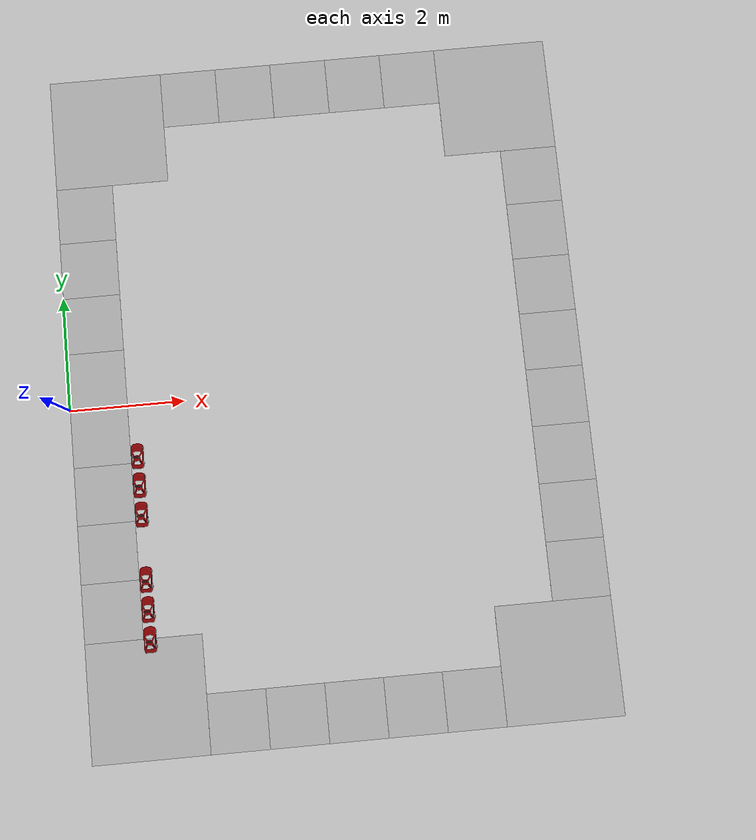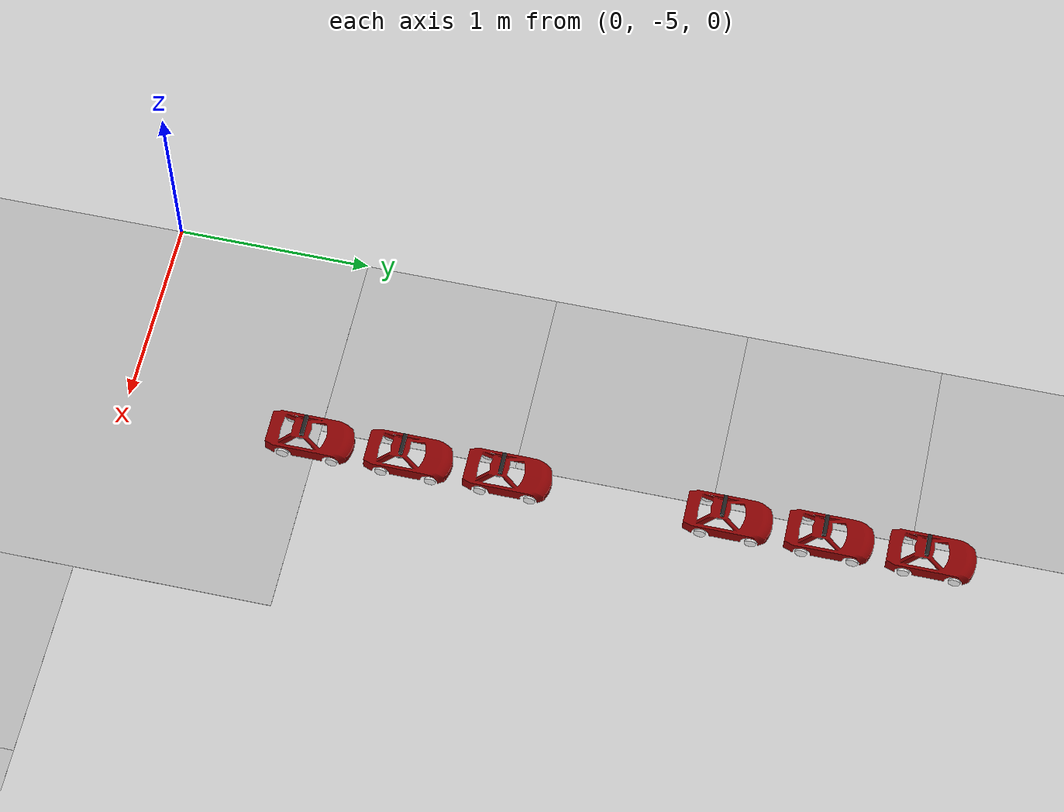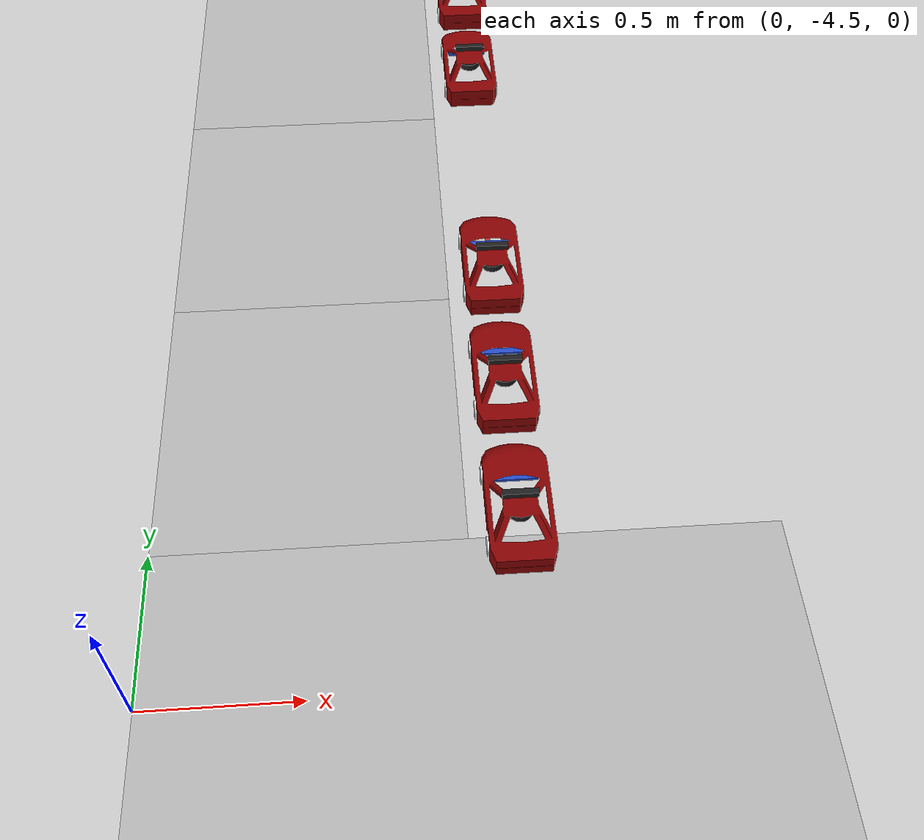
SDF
<?xml version="1.0" ?>
<sdf version="1.5">
  <world name="parallel_parking">
  	<include>
      <uri>model://ground_plane</uri>
      <pose> 0 0 -.0001 0 0 0 </pose>
    </include>

    <include>
      <uri>model://sun</uri>
    </include>

    <include>
      	<uri>model://AutoNOMOS_mini_static</uri>
      	<pose>1.15 -4 0.16 0 0 1.5707 </pose>
    </include>

    <include>
      	<uri>model://AutoNOMOS_mini_static</uri>
      	<pose>1.15 -3.5 0.16 0 0 1.5707 </pose>
    </include>

    <include>
      	<uri>model://AutoNOMOS_mini_static</uri>
      	<pose>1.15 -3 0.16 0 0 1.5707 </pose>
    </include>

    <include>
      	<uri>model://AutoNOMOS_mini_static</uri>
      	<pose>1.15 -1.9 0.16 0 0 1.5707 </pose>
    </include>

    <include>
      	<uri>model://AutoNOMOS_mini_static</uri>
      	<pose>1.15 -1.4 0.16 0 0 1.5707 </pose>
    </include>

    <include>
      	<uri>model://AutoNOMOS_mini_static</uri>
      	<pose>1.15 -0.9 0.16 0 0 1.5707 </pose>
    </include>

    <include>
      <uri>model://straight_road</uri>
      <pose>.5 .5 0 0 0 0 </pose>
    </include>

    <include>
      <uri>model://straight_road</uri>
      <pose>.5 -.5 0 0 0 0 </pose>
    </include>

    <include>
      <uri>model://straight_road</uri>
      <pose>.5 1.5 0 0 0 0 </pose>
    </include>

    <include>
      <uri>model://straight_road</uri>
      <pose>.5 -1.5 0 0 0 0 </pose>
    </include>

    <include>
      <uri>model://straight_road</uri>
      <pose>.5 -2.5 0 0 0 0 </pose>
    </include>

    <include>
      <uri>model://straight_road</uri>
      <pose>.5 2.5 0 0 0 0 </pose>
    </include>

    <include>
      <uri>model://straight_road</uri>
      <pose>.5 -3.5 0 0 0 0 </pose>
    </include>

    <include>
      <uri>model://straight_road</uri>
      <pose>.5 3.5 0 0 0 0 </pose>
    </include>

    <include>
      <uri>model://curved_road</uri>
      <pose> 1 5 0 0 0 0 </pose>
  	</include>

  	<include>
      <uri>model://straight_road</uri>
      <pose> 2.5 5.5 0 0 0 -1.570796327 </pose>
    </include>

    <include>
      <uri>model://straight_road</uri>
      <pose>3.5 5.5 0 0 0 -1.570796327 </pose>
    </include>

    <include>
      <uri>model://straight_road</uri>
      <pose>4.5 5.5 0 0 0 -1.570796327 </pose>
    </include>

    <include>
      <uri>model://straight_road</uri>
      <pose>5.5 5.5 0 0 0 -1.570796327 </pose>
    </include>

    <include>
      <uri>model://straight_road</uri>
      <pose>6.5 5.5 0 0 0 -1.570796327 </pose>
    </include>

    <include>
      <uri>model://curved_road</uri>
      <pose> 8 5 0 0 0 -1.570796327 </pose>
  	</include>

    <include>
      <uri>model://straight_road</uri>
      <pose>2.5 -5.5 0 0 0 1.570796327 </pose>
    </include>

    <include>
      <uri>model://straight_road</uri>
      <pose>3.5 -5.5 0 0 0 1.570796327 </pose>
    </include>

    <include>
      <uri>model://straight_road</uri>
      <pose>4.5 -5.5 0 0 0 1.570796327 </pose>
    </include>

    <include>
      <uri>model://straight_road</uri>
      <pose>5.5 -5.5 0 0 0 1.570796327 </pose>
    </include>

    <include>
      <uri>model://straight_road</uri>
      <pose>6.5 -5.5 0 0 0 1.570796327 </pose>
    </include>

    <include>
      <uri>model://curved_road</uri>
      <pose> 8 -5 0 0 0 3.141592654 </pose>
  	</include>

    <include>
      <uri>model://straight_road</uri>
      <pose>8.5 .5 0 0 0 3.141592654 </pose>
    </include>

    <include>
      <uri>model://straight_road</uri>
      <pose>8.5 1.5 0 0 0 3.141592654 </pose>
    </include>

    <include>
      <uri>model://straight_road</uri>
      <pose>8.5 2.5 0 0 0 3.141592654 </pose>
    </include>

    <include>
      <uri>model://straight_road</uri>
      <pose>8.5 3.5 0 0 0 3.141592654 </pose>
    </include>

    <include>
      <uri>model://straight_road</uri>
      <pose>8.5 -.5 0 0 0 3.141592654 </pose>
    </include>

    <include>
      <uri>model://straight_road</uri>
      <pose>8.5 -1.5 0 0 0 3.141592654 </pose>
    </include>

    <include>
      <uri>model://straight_road</uri>
      <pose>8.5 -2.5 0 0 0 3.141592654 </pose>
    </include>

    <include>
      <uri>model://straight_road</uri>
      <pose>8.5 -3.5 0 0 0 3.141592654 </pose>
    </include>

      <include>
      <uri>model://curved_road</uri>
      <pose> 1 -5 0 0 0 1.570796327 </pose>
  	</include>
  </world>
</sdf>

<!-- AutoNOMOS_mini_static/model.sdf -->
<sdf version='1.3'>
  <model name='AutoNOMOS_mini_static'>

    <link name='base_link'>
    </link>

    <link name="body">
      	<inertial>
	        <mass>6</mass>
	        <inertia>
	          <ixx>0.0067</ixx>
	          <ixy>0.000000</ixy>
	          <ixz>0.00088</ixz>
	          <iyy>0.07846</iyy>
	          <iyz>0.000000</iyz>
	          <izz>0.08387</izz>
	        </inertia>
      	</inertial>

	    <visual name="visual_body">
	      	<geometry>
				<mesh><uri>model://AutoNOMOS_mini/meshes/autonomos.dae</uri></mesh>
	      	</geometry>
	    </visual>

	    <collision name="collision_body">
	    	<geometry>
				<mesh><uri>model://AutoNOMOS_mini/meshes/autonomos.dae</uri></mesh>
	      	</geometry>
	    </collision>

    </link>

    <joint name="base_link_to_body" type="fixed">
    	<pose>0.000000 0.000000 0.000000 0.000000 0.000000 0.000000</pose>
    	<parent>base_link</parent>
		<child>body </child>
    </joint>

    <link name='back_left_wheel_link'>
      <pose>-0.125000 0.100000 0.0100000 1.570800 0.000000 0.000000</pose>
      <inertial>
        <mass>0.010000</mass>
        <inertia>
          <ixx>0.010000</ixx>
          <ixy>0.000000</ixy>
          <ixz>0.000000</ixz>
          <iyy>0.010000</iyy>
          <iyz>0.000000</iyz>
          <izz>0.010000</izz>
        </inertia>
      </inertial>
      <collision name='back_left_wheel_link_geom'>
        <geometry>
          <cylinder>
            <length>0.01000</length>
            <radius>0.03000</radius>
          </cylinder>
        </geometry>
      </collision>
      <visual name='back_left_wheel_link_visual'>
        <geometry>
          <cylinder>
            <length>0.01000</length>
            <radius>0.03000</radius>
          </cylinder>
        </geometry>
        <material>
          <script>
            <name>Gazebo/White</name>
          </script>
        </material>
      </visual>
    </link>

    <joint name='back_left_wheel_joint' type='revolute'>
      <child>back_left_wheel_link</child>
      <parent>base_link</parent>
      <axis>
        <xyz>0.000000 1.000000 0.000000</xyz>
        <limit>
          <lower>-10000000000000000.000000</lower>
          <upper>10000000000000000.000000</upper>
        </limit>
      </axis>
    </joint>

    <link name='back_right_wheel_link'>
      <pose>-0.125000 -0.100000 0.0100000 1.570800 0.000000 0.000000</pose>
      <inertial>
        <mass>0.010000</mass>
        <inertia>
          <ixx>0.010000</ixx>
          <ixy>0.000000</ixy>
          <ixz>0.000000</ixz>
          <iyy>0.010000</iyy>
          <iyz>0.000000</iyz>
          <izz>0.010000</izz>
        </inertia>
      </inertial>
      <collision name='back_right_wheel_link_geom'>
        <geometry>
          <cylinder>
            <length>0.01000</length>
            <radius>0.030000</radius>
          </cylinder>
        </geometry>
      </collision>
      <visual name='back_right_wheel_link_visual'>
        <geometry>
          <cylinder>
            <length>0.01000</length>
            <radius>0.030000</radius>
          </cylinder>
        </geometry>
        <material>
          <script>
            <name>Gazebo/White</name>
          </script>
        </material>
      </visual>
    </link>

    <joint name='back_right_wheel_joint' type='revolute'>
      <child>back_right_wheel_link</child>
      <parent>base_link</parent>
      <axis>
        <xyz>0.000000 1.000000 0.000000</xyz>
        <limit>
          <lower>-10000000000000000.000000</lower>
          <upper>10000000000000000.000000</upper>
        </limit>
      </axis>
    </joint>

    <link name='front_left_bar_link'>
      <pose>0.125000 0.060000 0.0100000 0.000000 0.000000 0.000000</pose>
      <inertial>
        <mass>0.010000</mass>
        <inertia>
          <ixx>0.010000</ixx>
          <ixy>0.000000</ixy>
          <ixz>0.000000</ixz>
          <iyy>0.010000</iyy>
          <iyz>0.000000</iyz>
          <izz>0.010000</izz>
        </inertia>
      </inertial>
      <collision name='front_left_bar_link_geom'>
        <geometry>
          <box>
            <size>0.040000 0.020000 0.005000</size>
          </box>
        </geometry>
      </collision>
      <visual name='front_left_bar_link_visual'>
        <geometry>
          <box>
            <size>0.040000 0.020000 0.005000</size>
          </box>
        </geometry>
        <material>
          <script>
            <name>Gazebo/Red</name>
          </script>
        </material>
      </visual>
    </link>

    <joint name='front_left_bar_joint' type='revolute'>
      <child>front_left_bar_link</child>
      <parent>base_link</parent>
      <axis>
        <xyz>0.000000 0.000000 1.000000</xyz>
        <limit>
          <lower>-0.500000</lower>
          <upper>0.500000</upper>
        </limit>
      </axis>
    </joint>

    <link name='front_left_wheel_link'>
      <pose>0.125000 0.100000 0.0100000 1.570800 0.000000 0.000000</pose>
      <inertial>
        <mass>0.010000</mass>
        <inertia>
          <ixx>0.010000</ixx>
          <ixy>0.000000</ixy>
          <ixz>0.000000</ixz>
          <iyy>0.010000</iyy>
          <iyz>0.000000</iyz>
          <izz>0.010000</izz>
        </inertia>
      </inertial>
      <collision name='front_left_wheel_link_geom'>
        <geometry>
          <cylinder>
            <length>0.01000</length>
            <radius>0.030000</radius>
          </cylinder>
        </geometry>
      </collision>
      <visual name='front_left_wheel_link_visual'>
        <geometry>
          <cylinder>
            <length>0.01000</length>
            <radius>0.030000</radius>
          </cylinder>
        </geometry>
        <material>
          <script>
            <name>Gazebo/White</name>
          </script>
        </material>
      </visual>
    </link>

    <joint name='front_left_wheel_joint' type='revolute'>
      <child>front_left_wheel_link</child>
      <parent>front_left_bar_link</parent>
      <axis>
        <xyz>0.000000 1.000000 0.000000</xyz>
        <limit>
          <lower>-10000000000000000.000000</lower>
          <upper>10000000000000000.000000</upper>
        </limit>
        <dynamics/>
      </axis>
    </joint>

    <link name='front_right_bar_link'>
      <pose>0.125000 -0.060000 0.0100000 0.000000 0.000000 0.000000</pose>
      <inertial>
        <mass>0.010000</mass>
        <inertia>
          <ixx>0.010000</ixx>
          <ixy>0.000000</ixy>
          <ixz>0.000000</ixz>
          <iyy>0.010000</iyy>
          <iyz>0.000000</iyz>
          <izz>0.010000</izz>
        </inertia>
      </inertial>
      <collision name='front_right_bar_link_geom'>
        <geometry>
          <box>
            <size>0.040000 0.020000 0.005000</size>
          </box>
        </geometry>
      </collision>
      <visual name='front_right_bar_link_visual'>
        <geometry>
          <box>
            <size>0.040000 0.020000 0.005000</size>
          </box>
        </geometry>
        <material>
          <script>
            <name>Gazebo/Red</name>
          </script>
        </material>
      </visual>
    </link>

    <joint name='front_right_bar_joint' type='revolute'>
      <child>front_right_bar_link</child>
      <parent>base_link</parent>
      <axis>
        <xyz>0.000000 0.000000 1.000000</xyz>
        <limit>
          <lower>-0.500000</lower>
          <upper>0.500000</upper>
        </limit>
        <dynamics/>
      </axis>
    </joint>

    <link name='front_right_wheel_link'>
      <pose>0.125000 -0.100000 0.0100000 1.570800 0.000000 0.000000</pose>
      <inertial>
        <mass>0.010000</mass>
        <inertia>
          <ixx>0.010000</ixx>
          <ixy>0.000000</ixy>
          <ixz>0.000000</ixz>
          <iyy>0.010000</iyy>
          <iyz>0.000000</iyz>
          <izz>0.010000</izz>
        </inertia>
      </inertial>
      <collision name='front_right_wheel_link_geom'>
        <geometry>
          <cylinder>
            <length>0.01000</length>
            <radius>0.030000</radius>
          </cylinder>
        </geometry>
      </collision>
      <visual name='front_right_wheel_link_visual'>
        <geometry>
          <cylinder>
            <length>0.01000</length>
            <radius>0.030000</radius>
          </cylinder>
        </geometry>
        <material>
          <script>
            <name>Gazebo/White</name>
          </script>
        </material>
      </visual>
    </link>

    <joint name='front_right_wheel_joint' type='revolute'>
      <child>front_right_wheel_link</child>
      <parent>front_right_bar_link</parent>
      <axis>
        <xyz>0.000000 1.000000 0.000000</xyz>
        <limit>
          <lower>-10000000000000000.000000</lower>
          <upper>10000000000000000.000000</upper>
        </limit>
        <dynamics/>
      </axis>
    </joint>

    <link name='steer_link'>
      <pose>0.125000 0.000000 0.0100000 0.000000 0.000000 0.000000</pose>
      <inertial>
        <mass>0.010000</mass>
        <inertia>
          <ixx>0.010000</ixx>
          <ixy>0.000000</ixy>
          <ixz>0.000000</ixz>
          <iyy>0.010000</iyy>
          <iyz>0.000000</iyz>
          <izz>0.010000</izz>
        </inertia>
      </inertial>
      <collision name='steer_link_geom'>
        <geometry>
          <box>
            <size>0.040000 0.020000 0.005000</size>
          </box>
        </geometry>
      </collision>
      <visual name='steer_link_visual'>
        <geometry>
          <box>
            <size>0.040000 0.020000 0.005000</size>
          </box>
        </geometry>
        <material>
          <script>
            <name>Gazebo/Red</name>
          </script>
        </material>
      </visual>
    </link>

    <joint name='steer_joint' type='revolute'>
      <child>steer_link</child>
      <parent>base_link</parent>
      <axis>
        <xyz>0.000000 0.000000 1.000000</xyz>
        <limit>
          <lower>-0.500000</lower>
          <upper>0.500000</upper>
        </limit>
        <dynamics/>
      </axis>
    </joint>

    <link name='ackermann_bar_link'>
      <pose>0.11000 0.000000 0.0100000 0.000000 0.000000 0.000000</pose>
      <inertial>
        <mass>0.010000</mass>
        <inertia>
          <ixx>0.010000</ixx>
          <ixy>0.000000</ixy>
          <ixz>0.000000</ixz>
          <iyy>0.010000</iyy>
          <iyz>0.000000</iyz>
          <izz>0.010000</izz>
        </inertia>
      </inertial>
      <collision name='ackermann_bar_link_geom'>
        <geometry>
          <box>
            <size>0.020000 0.150000 0.010000</size>
          </box>
        </geometry>
      </collision>
      <visual name='ackermann_bar_link_visual'>
        <geometry>
          <box>
            <size>0.020000 0.150000 0.010000</size>
          </box>
        </geometry>
        <material>
          <script>
            <name>Gazebo/Blue</name>
          </script>
        </material>
      </visual>
    </link>

    <joint name='ackermann_joint' type='revolute'>
      <child>ackermann_bar_link</child>
      <parent>steer_link</parent>
      <axis>
        <xyz>0.000000 0.000000 1.000000</xyz>
        <limit>
          <lower>-0.500000</lower>
          <upper>0.500000</upper>
        </limit>
        <dynamics/>
      </axis>
    </joint>

    <joint name='ackermann_left_bar_joint' type='revolute'>
      <parent>front_left_bar_link</parent>
      <child>ackermann_bar_link</child>
      <axis>
        <xyz>0.000000 0.000000 1.000000</xyz>
        <limit>
          <lower>-10000000000000000.000000</lower>
          <upper>10000000000000000.000000</upper>
        </limit>
        <dynamics/>
      </axis>
      <pose>0.000000 0.060000 0.000000 0.000000 0.000000 0.000000</pose>
    </joint>

    <joint name='ackermann_right_bar_joint' type='revolute'>
      <parent>front_right_bar_link</parent>
      <child>ackermann_bar_link</child>
      <axis>
        <xyz>0.000000 0.000000 1.000000</xyz>
        <limit>
          <lower>-10000000000000000.000000</lower>
          <upper>10000000000000000.000000</upper>
        </limit>
        <dynamics/>
      </axis>
      <pose>0.000000 -0.060000 0.000000 0.000000 0.000000 0.000000</pose>
    </joint>

    <!-- laser link -->
  	<link name="laser_link">
	  	<pose>-0.045 0.00000 0.085 0.000000 0.000000 0.000000</pose>
	    <inertial>
	    	<mass>0.1197</mass>
	        <inertia>
	          <ixx>0.010000</ixx>
	          <ixy>0.000000</ixy>
	          <ixz>0.000000</ixz>
	          <iyy>0.010000</iyy>
	          <iyz>0.000000</iyz>
	          <izz>0.010000</izz>
	        </inertia>
	    </inertial>
	    <collision name="collision_laser_link">
	    	<geometry>
	          <cylinder>
	            <length>0.02500</length>
	            <radius>0.040000</radius>
	          </cylinder>
	        </geometry>
	    </collision>
	    <visual name="visual_laser_link">
	    	<geometry>
	          <cylinder>
	            <length>0.02500</length>
	            <radius>0.040000</radius>
	          </cylinder>
	        </geometry>
	        <material>
	          <script>
	            <name>Gazebo/Black</name>
	          </script>
	        </material>
	    </visual>

  	</link>

	<joint name="laser_joint" type="fixed">
	    <child>laser_link</child>
	    <parent>base_link</parent>
	    <axis>
	        <xyz>0.000000 0.000000 1.000000</xyz>
	    </axis>
	</joint>

	<!-- laser link -->
  	<link name="camera_link">
	  	<pose>-0.03 0.00000 0.145 0.0 0.06 0.0</pose>
	    <inertial>
	    	<mass>0.1197</mass>
	        <inertia>
	          <ixx>0.010000</ixx>
	          <ixy>0.000000</ixy>
	          <ixz>0.000000</ixz>
	          <iyy>0.010000</iyy>
	          <iyz>0.000000</iyz>
	          <izz>0.010000</izz>
	        </inertia>
	    </inertial>
	    <collision name="collision_camera_link">
	    	<geometry>
	          <box>
	            <size>0.02 0.11 0.02</size>
	          </box>
	        </geometry>
	    </collision>
	    <visual name="visual_camera_link">
	    	<geometry>
	          <box>
	            <size>0.02 0.11 0.02</size>
	          </box>
	        </geometry>
	        <material>
	          <script>
	            <name>Gazebo/Black</name>
	          </script>
	        </material>
	    </visual>

  	</link>

	<joint name="camera_joint" type="fixed">
	    <child>camera_link</child>
	    <parent>base_link</parent>
	    <axis>
	        <xyz>0.000000 0.000000 1.000000</xyz>
	    </axis>
	</joint>

    <!-- plugin with topics to control steer and speed -->

  </model>
</sdf>

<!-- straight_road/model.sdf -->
<sdf version="1.4">
	<model name="straight_road">
		<static>true</static>
		<link name="link">
			<collision name="collision">
				<geometry>
					<plane>
						<normal>0 0 1</normal>
						<size>1 1</size>
					</plane>
				</geometry>
				<surface>
					<friction>
						<ode>
							<mu>100</mu>
							<mu2>50</mu2>
						</ode>
					</friction>
				</surface>
			</collision>
			<visual name="visual">
				<cast_shadows>false</cast_shadows>
				<geometry>
					<plane>
						<normal>0 0 1</normal>
						<size>1 1</size>
					</plane>
				</geometry>
				<material>
					<script>
						<uri>model://straight_road/materials/scripts</uri>
						<uri>model://straight_road/materials/textures</uri>
						<name>straight_road/Image</name>
					</script>
				</material>
			</visual>
		</link>
	</model>
</sdf>

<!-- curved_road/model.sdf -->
<sdf version="1.4">
	<model name="curved_road">
		<static>true</static>
		<link name="link">
			<collision name="collision">
				<geometry>
					<plane>
						<normal>0 0 1</normal>
						<size>2 2</size>
					</plane>
				</geometry>
				<surface>
					<friction>
						<ode>
							<mu>100</mu>
							<mu2>50</mu2>
						</ode>
					</friction>
				</surface>
			</collision>
			<visual name="visual">
				<cast_shadows>false</cast_shadows>
				<geometry>
					<plane>
						<normal>0 0 1</normal>
						<size>2 2</size>
					</plane>
				</geometry>
				<material>
					<script>
						<uri>model://curved_road/materials/scripts</uri>
						<uri>model://curved_road/materials/textures</uri>
						<name>curved_road/Image</name>
					</script>
				</material>
			</visual>
		</link>
	</model>
</sdf>
